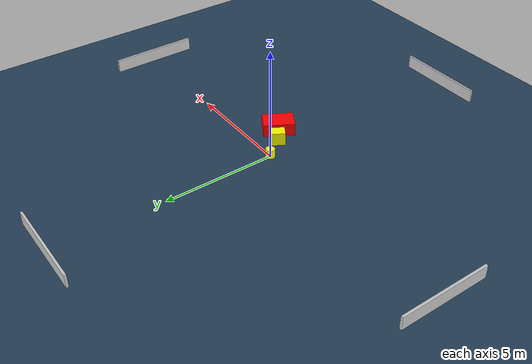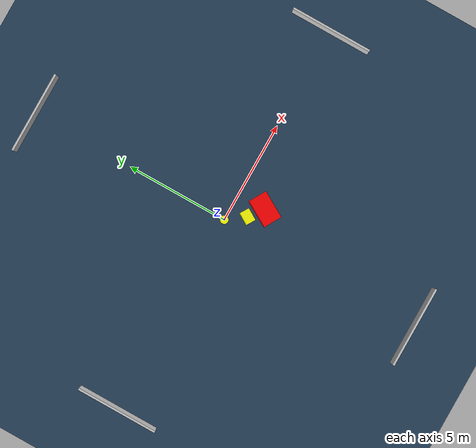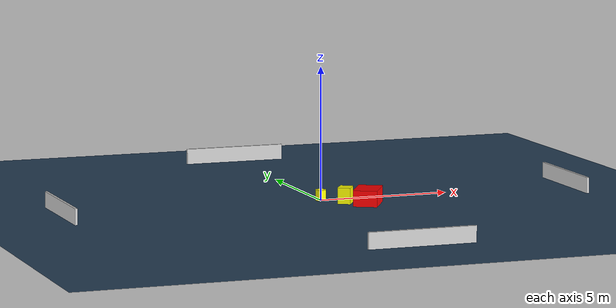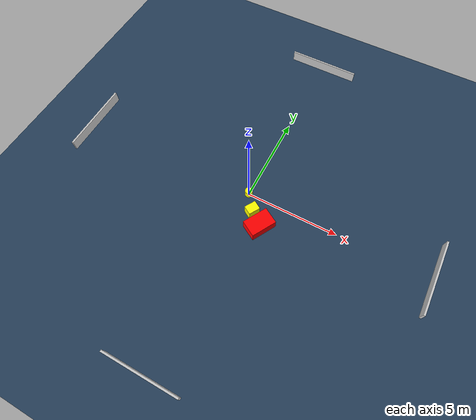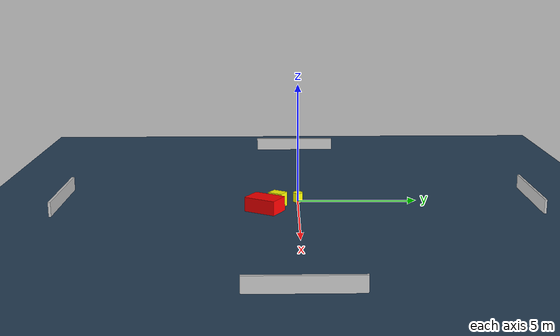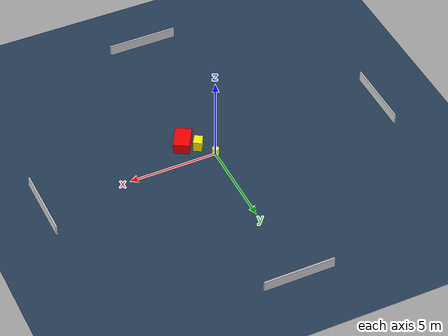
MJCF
<?xml version="1.0" ?>
<mujoco model="generated_environment">
  <option timestep="0.01" integrator="RK4" cone="elliptic"/>
  <default>
    <geom density="1"/>
  </default>
  <asset>
    <texture builtin="gradient" height="3072" name="skybox" rgb1="0.3 0.5 0.7" rgb2="0 0 0" type="skybox" width="512"/>
    <texture builtin="checker" height="300" name="groundplane" rgb1="0.2 0.3 0.4" rgb2="0.1 0.2 0.3" type="2d" width="300"/>
    <material name="groundplane" reflectance="0.2" texrepeat="5 5" texture="groundplane"/>
  </asset>
  <worldbody>
    <light dir="0 0 -1" directional="true" pos="0 0 1.5"/>
    <geom condim="3" friction="0.5 0.005 0.001" material="groundplane" name="floor" pos="0 0 0" size="0 0 0.05" type="plane"/>
    <body name="walls">
      <geom name="wall_1" condim="4" pos="-10.0 0.0 0.3" rgba="0.800000011920929 0.800000011920929 0.800000011920929 1.0" size="0.05 2.0 0.3" type="box"/>
      <geom name="wall_2" condim="4" pos="10.0 0.0 0.3" rgba="0.800000011920929 0.800000011920929 0.800000011920929 1.0" size="0.05 2.0 0.3" type="box"/>
      <geom name="wall_3" condim="4" pos="0.0 -10.0 0.3" rgba="0.800000011920929 0.800000011920929 0.800000011920929 1.0" size="2.0 0.05 0.3" type="box"/>
      <geom name="wall_4" condim="4" pos="0.0 10.0 0.3" rgba="0.800000011920929 0.800000011920929 0.800000011920929 1.0" size="2.0 0.05 0.3" type="box"/>
    </body>
    <body name="robot">
      <joint name="joint_x" type="slide" pos="0 0 0" axis="1 0 0"/>
      <joint name="joint_y" type="slide" pos="0 0 0" axis="0 1 0"/>
      <geom name="robot" type="cylinder" pos="0.0 0.0 0.2" size="0.2 0.2 0.0" mass="5.0" friction="1.0 0.005 0.0001" condim="4" rgba="1.0 1.0 0.0 1.0"/>
    </body>
    <body name="obstacle_1_movable">
      <geom name="obstacle_1_movable" condim="4" pos="0.6492783086290301 -0.8608715948190917 0.3" euler="0 0 328.6373855034552" friction="0.0 0.005 0.001" rgba="1.0 1.0 0.0 1.0" size="0.24107184452369645 0.31179893499415445 0.3" type="box" mass="0.1"/>
      <joint type="free"/>
    </body>
    <body name="obstacle_2_static">
      <geom name="obstacle_2_static" condim="4" pos="1.3383210078579268 -1.3917623968693955 0.3" euler="0 0 330.0711516404831" friction="0.0 0.005 0.001" rgba="1.0 0.0 0.0 1.0" size="0.4528550415472619 0.6910516440371319 0.3" type="box"/>
    </body>
  </worldbody>
  <actuator>
    <motor name="actuator_x" joint="joint_x" gear="1" ctrlrange="-1 1"/>
    <motor name="actuator_y" joint="joint_y" gear="1" ctrlrange="-1 1"/>
  </actuator>
</mujoco>
